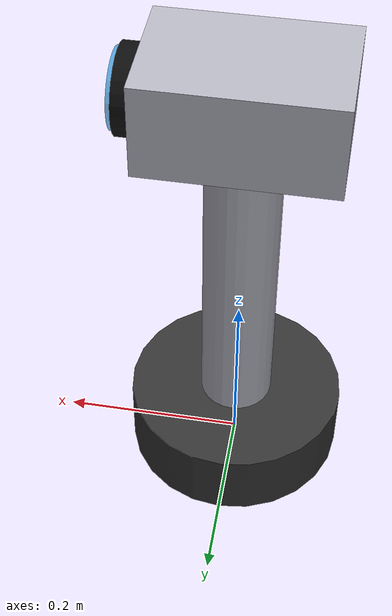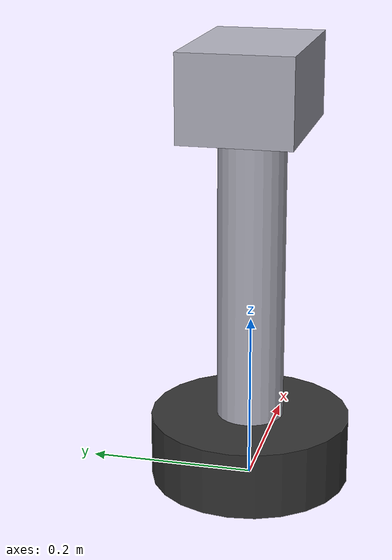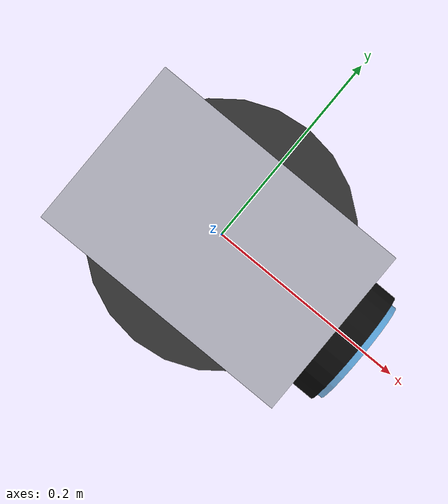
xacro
<?xml version="1.0"?>
<robot xmlns:xacro="http://www.ros.org/wiki/xacro" name="ptz_robot">

  <xacro:property name="base_radius" value="0.12" />
  <xacro:property name="base_height" value="0.08" />

  <xacro:property name="pan_link_length" value="0.4" />
  <xacro:property name="pan_link_radius" value="0.04" />

  <xacro:property name="tilt_box_x" value="0.2" />
  <xacro:property name="tilt_box_y" value="0.13" />
  <xacro:property name="tilt_box_z" value="0.1" />
  <xacro:property name="lens_length" value="0.2" />
  <xacro:property name="lens_radius" value="0.045" />

  <material name="dark_grey">
    <color rgba="0.2 0.2 0.2 1"/>
  </material>
  <material name="brushed_aluminum">
    <color rgba="0.7 0.7 0.75 1"/>
  </material>
  <material name="lens_black">
    <color rgba="0.05 0.05 0.05 1"/>
  </material>
  <material name="sensor_glass">
    <color rgba="0.0 0.5 0.8 0.6"/>
  </material>

  <xacro:macro name="inertial_matrix" params="mass ixx:=0.01 iyy:=0.01 izz:=0.01">
    <inertial>
      <origin xyz="0 0 0" rpy="0 0 0"/>
      <mass value="${mass}" />
      <inertia ixx="${ixx}" ixy="0.0" ixz="0.0"
               iyy="${iyy}" iyz="0.0"
               izz="${izz}" />
    </inertial>
  </xacro:macro>

  <link name="base_footprint"/>

  <joint name="base_joint" type="fixed">
    <parent link="base_footprint"/>
    <child link="base_link"/>
    <origin xyz="0 0 ${base_height/2}" rpy="0 0 0"/>
  </joint>

  <!-- ==========================
       Base link (flat disk)
       ========================== -->
  <link name="base_link">
    <visual>
      <geometry>
        <cylinder length="${base_height}" radius="${base_radius}"/>
      </geometry>
      <material name="dark_grey"/>
    </visual>
    <collision>
      <geometry>
        <cylinder length="${base_height}" radius="${base_radius}"/>
      </geometry>
    </collision>
    <xacro:inertial_matrix mass="2.0"/>
  </link>

  <joint name="pan_joint" type="continuous">
    <parent link="base_link"/>
    <child link="pan_link"/>
    <origin xyz="0 0 ${base_height/2}" rpy="0 0 0"/>
    <axis xyz="0 0 1"/>
    <dynamics damping="0.1" friction="0.1"/>
  </joint>

  <!-- ==========================
       Pan link (vertical cylinder)
       ========================== -->
  <link name="pan_link">
    <visual>
      <origin xyz="0 0 ${pan_link_length/2}" rpy="0 0 0"/>
      <geometry>
        <cylinder length="${pan_link_length}" radius="${pan_link_radius}"/>
      </geometry>
      <material name="brushed_aluminum"/>
    </visual>
    <collision>
      <origin xyz="0 0 ${pan_link_length/2}" rpy="0 0 0"/>
      <geometry>
        <cylinder length="${pan_link_length}" radius="${pan_link_radius}"/>
      </geometry>
    </collision>
    <xacro:inertial_matrix mass="0.5"/>
  </link>

  <joint name="tilt_joint" type="revolute">
    <parent link="pan_link"/>
    <child link="tilt_link"/>
    <origin xyz="0 0 ${pan_link_length}" rpy="0 0 0"/>
    <axis xyz="0 1 0"/>
    <limit lower="-1.2" upper="0.5" effort="10" velocity="1.5"/>
    <dynamics damping="0.1" friction="0.5"/>
  </joint>

  <!-- ==========================
       Tilt link (horizontal rod)
       ========================== -->
  <link name="tilt_link">
    <visual>
      <geometry>
        <box size="${tilt_box_x} ${tilt_box_y} ${tilt_box_z}"/>
      </geometry>
      <material name="brushed_aluminum"/>
    </visual>
    <collision>
      <geometry>
        <box size="${tilt_box_x} ${tilt_box_y} ${tilt_box_z}"/>
      </geometry>
    </collision>
    <xacro:inertial_matrix mass="0.5"/>
  </link>

  <joint name="zoom_joint" type="prismatic">
    <parent link="tilt_link"/>
    <child link="camera_lens_link"/>
    <origin xyz="${tilt_box_x/2 + 0.01} 0 0" rpy="0 0 0"/>
    <axis xyz="1 0 0"/>
    <limit lower="0.0" upper="0.16" effort="300.0" velocity="0.55"/>
    <dynamics damping="0.1"/>
  </joint>

  <!-- ==========================
       Zoom slider (prismatic)
       ========================== -->
  <link name="camera_lens_link">
    <visual>
      <origin xyz="${-lens_length/2 + 0.01} 0 0" rpy="0 ${pi/2} 0"/>
      <geometry>
        <cylinder length="${lens_length}" radius="${lens_radius}"/>
      </geometry>
      <material name="lens_black"/>
    </visual>
    <collision>
       <origin xyz="${-lens_length/2 + 0.01} 0 0" rpy="0 ${pi/2} 0"/>
      <geometry>
        <cylinder length="${lens_length}" radius="${lens_radius}"/>
      </geometry>
    </collision>
    <xacro:inertial_matrix mass="0.2"/>
  </link>

  <joint name="camera_tip_joint" type="fixed">
    <parent link="camera_lens_link"/>
    <child link="camera_glass_link"/>
    <origin xyz="0.01 0 0" rpy="0 0 0"/>
  </joint>

  <!-- ==========================
       Camera body
       ========================== -->
       <link name="camera_glass_link">
         <!-- sensor glass -->
         <visual name="glass_disk">
           <origin xyz="0 0 0" rpy="0 ${pi/2} 0"/>
           <geometry>
             <cylinder length="0.01" radius="${lens_radius - 0.005}"/>
           </geometry>
           <material name="sensor_glass"/>
         </visual>

         <!-- inner “aperture” disk for depth -->
         <visual name="inner_aperture">
           <origin xyz="-0.001 0 0" rpy="0 ${pi/2} 0"/>
           <geometry>
             <cylinder length="0.003" radius="${lens_radius*0.55}"/>
           </geometry>
           <material name="lens_black"/>
         </visual>
       </link>

  <joint name="camera_optical_joint" type="fixed">
    <parent link="camera_glass_link"/>
    <child link="camera_link_optical"/>
    <origin xyz="0 0 0" rpy="-1.5708 0 -1.5708"/>
  </joint>

  <!-- ==========================
       Optional optical frame
       ========================== -->
  <link name="camera_link_optical">
    <xacro:inertial_matrix mass="0.001"/>
  </link>

  <!-- ==========================
       Gazebo / Ignition extensions
       ========================== -->

  <gazebo reference="base_link">
    <gravity>0</gravity>
    <material>Gazebo/DarkGrey</material>
  </gazebo>
  <gazebo reference="pan_link">
    <material>Gazebo/Grey</material>
  </gazebo>
  <gazebo reference="tilt_link">
    <material>Gazebo/Grey</material>
  </gazebo>
  <gazebo reference="camera_lens_link">
    <material>Gazebo/Black</material>
  </gazebo>

  <gazebo reference="camera_glass_link">
    <sensor name="camera" type="camera">
      <always_on>true</always_on>
      <pose>0 0 0 0 0 0</pose>
      <visualize>true</visualize>
      <update_rate>5</update_rate>

      <!-- Frame id used inside Gazebo messages -->
      <gz_frame_id>camera_link_optical</gz_frame_id>

      <!-- Gazebo Transport topics to bridge with ros_gz_bridge -->
      <topic>/ptz/camera/image_raw</topic>  <!-- topic that image gets published on -->

      <camera name="ptz_camera">
        <camera_info_topic>/ptz/camera/camera_info</camera_info_topic>
        <horizontal_fov>1.047</horizontal_fov>
        <image>
          <width>320</width>
          <height>240</height>
          <format>R8G8B8</format>
        </image>
        <clip>
          <near>0.1</near>
          <far>100.0</far>
        </clip>
      </camera>
      <visualize>true</visualize>
    </sensor>
  </gazebo>

  <!-- Ignition Gazebo Plugins -->
  <gazebo>

  <!-- CAMER SENSOR -->
    <plugin
        filename="ignition-gazebo-sensors-system"
        name="ignition::gazebo::systems::Sensors">
        <render_engine>ogre2</render_engine>
    </plugin>

    <!-- Joint Position Controller plugin (GUI) for Ignition -->
    <!-- Pan -->

    <!-- Tilt -->

    <!-- Zoom -->

    <!-- Velocity controller plugins -->
    <!-- subscribe/recieve velocity commands on topic (default): /model/my_robot/joint/pan_joint/cmd_vel -->
    <!-- Pan velocity controller -->
    <plugin
      filename="ignition-gazebo-joint-controller-system"
      name="ignition::gazebo::systems::JointController">
      <joint_name>pan_joint</joint_name>
    </plugin>

    <!-- Tilt velocity controller -->
    <plugin
      filename="ignition-gazebo-joint-controller-system"
      name="ignition::gazebo::systems::JointController">
      <joint_name>tilt_joint</joint_name>
    </plugin>

    <!-- Zoom velocity controller -->
    <plugin
      filename="ignition-gazebo-joint-controller-system"
      name="ignition::gazebo::systems::JointController">
      <joint_name>zoom_joint</joint_name>
    </plugin>

    <!-- Publish joint states for all joints in this model -->
    <plugin
      filename="ignition-gazebo-joint-state-publisher-system"
      name="ignition::gazebo::systems::JointStatePublisher">
      <!-- This is the Gazebo JointState Transport topic; we’ll bridge/remap it in ROS -->
      <topic>/joint_states</topic>
    </plugin>

    <!-- KEYBOARD CONTROLS -->
    <!-- STOP motion with 'S' key -->

    <!-- Pan LEFT  with left arrow -->

    <!-- Pan RIGHT with right arrow -->

    <!-- Tilt UP with up arrow -->

    <!-- Tilt DOWN with down arrow -->

    <!-- Zoom IN with 'z' -->

    <!-- Zoom OUT with 'x' -->

  </gazebo>

  <!-- Transmissions for ros2_control (optional: needed if using ros2_control controllers) --> <!-- Example: Simple position interfaces for each joint -->

</robot>
